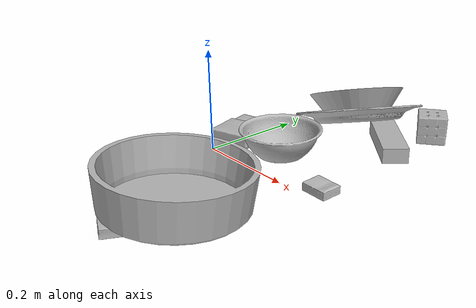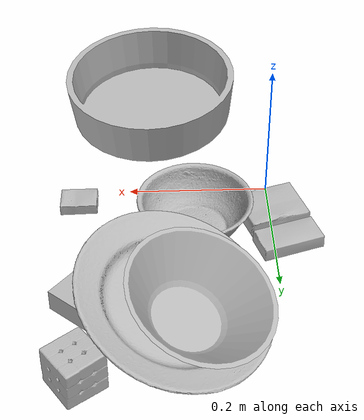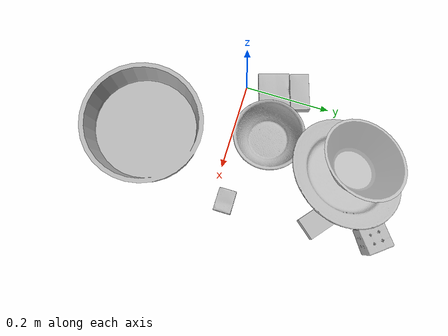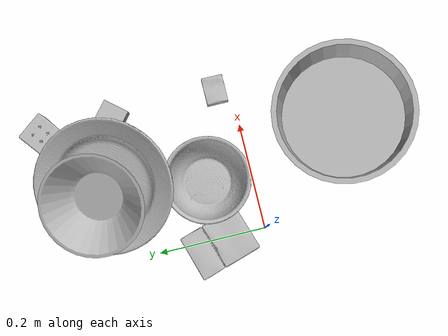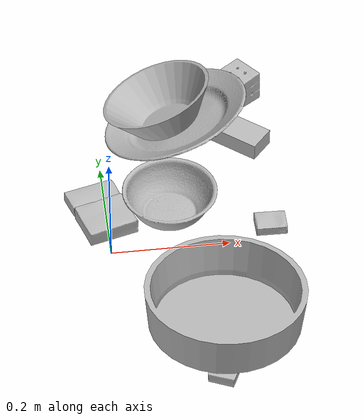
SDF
<sdf version="1.4">
  <world name="default">
    <light name="light1" type="point">
      <pose>0 0 1 0 0 0</pose>
      <diffuse>3 3 3 1</diffuse>
      <specular>3 3 3 1</specular>
    </light>
    <light name="light2" type="point">
      <pose>0 0.5 2 0 0 0</pose>
      <diffuse>1 1 1 1</diffuse>
      <specular>1 1 1 1</specular>
    </light>
    <light name="light3" type="point">
      <pose>0 0.5 2 0 0 0</pose>
      <diffuse>3 3 3 1</diffuse>
      <specular>3 3 3 1</specular>
    </light>
    <scene>
      <ambient>0.7 0.7 0.7</ambient>
    </scene>
    <model name="box1">
      <link name="link_box1">
        <collision name="default">
          <geometry>
            <mesh>
              <uri>model://sugar_box/collision_meshes/collision.obj</uri>
              <scale>0.5 0.5 0.5</scale>
            </mesh>
          </geometry>
          <surface>
            <friction>
              <ode>
                <mu>0.5</mu>
                <mu2>0.5</mu2>
              </ode>
            </friction>
          <contact>
        <ode>
            <max_vel>0</max_vel>
            <min_depth>0.0001</min_depth>
            <kp>1e8</kp>
        </ode>
    </contact></surface>
        </collision>
        <visual name="default">
          <geometry>
            <mesh>
              <uri>model://sugar_box/visual_meshes/visual.dae</uri>
              <scale>0.5 0.5 0.5</scale>
            </mesh>
          </geometry>
        </visual>
        <inertial>
          <mass>0.05968111753463745</mass>
          <pose>0.0005171863595023751 1.924554817378521e-05 -0.00018182402709499002 -0.00040462627153530444 0.0010506635220302928 0.002615378323275012</pose>
          <inertia>
            <ixx>1.2431535e-05</ixx>
            <iyy>4.0181283e-05</iyy>
            <izz>4.8101785e-05</izz>
            <ixy>0</ixy>
            <ixz>0</ixz>
            <iyz>0</iyz>
          </inertia>
        </inertial>
      </link>
      <pose>-0.01888187788426876 0.1234571784734726 0.011399306356906891 0.0007741625991740197 -0.023433579819164385 -2.8470410950421927</pose>
    </model>
    <model name="box11">
      <link name="link_box11">
        <collision name="default">
          <geometry>
            <mesh>
              <uri>model://cracker_box/collision_meshes/collision.obj</uri>
              <scale>0.25 0.25 0.25</scale>
            </mesh>
          </geometry>
          <surface>
            <friction>
              <ode>
                <mu>0.5</mu>
                <mu2>0.5</mu2>
              </ode>
            </friction>
          <contact>
        <ode>
            <max_vel>0</max_vel>
            <min_depth>0.0001</min_depth>
            <kp>1e8</kp>
        </ode>
    </contact></surface>
        </collision>
        <visual name="default">
          <geometry>
            <mesh>
              <uri>model://cracker_box/visual_meshes/visual.dae</uri>
              <scale>0.25 0.25 0.25</scale>
            </mesh>
          </geometry>
        </visual>
        <inertial>
          <mass>0.04741516709327698</mass>
          <pose>0.0002366035187151283 6.358561950037256e-05 -0.0004257383698131889 -0.00031620780351981393 -0.01110649053153066 0.0025467950031323855</pose>
          <inertia>
            <ixx>7.537689e-06</ixx>
            <iyy>1.2446206e-05</iyy>
            <izz>1.7761875e-05</izz>
            <ixy>0</ixy>
            <ixz>0</ixz>
            <iyz>0</iyz>
          </inertia>
        </inertial>
      </link>
      <pose>0.273222953081131 0.030375268310308456 0.009120449423789978 -0.011788062945073336 -0.007367179096934759 -3.141417551832201</pose>
    </model>
    <model name="box2">
      <link name="link_box2">
        <collision name="default">
          <geometry>
            <mesh>
              <uri>model://jenga/collision_meshes/collision.obj</uri>
              <scale>1.0 1.0 1.0</scale>
            </mesh>
          </geometry>
          <surface>
            <friction>
              <ode>
                <mu>0.5</mu>
                <mu2>0.5</mu2>
              </ode>
            </friction>
          <contact>
        <ode>
            <max_vel>0</max_vel>
            <min_depth>0.0001</min_depth>
            <kp>1e8</kp>
        </ode>
    </contact></surface>
        </collision>
        <visual name="default">
          <geometry>
            <mesh>
              <uri>model://jenga/visual_meshes/visual.dae</uri>
              <scale>1.0 1.0 1.0</scale>
            </mesh>
          </geometry>
        </visual>
        <inertial>
          <mass>0.17569443583488464</mass>
          <pose>-2.502855807051674e-07 -0.00010250010382151231 -4.0923401684267446e-05 0.0 -7.342153480750062e-07 0.0</pose>
          <inertia>
            <ixx>4.8618913e-05</ixx>
            <iyy>0.00032944046</iyy>
            <izz>0.0003517057</izz>
            <ixy>0</ixy>
            <ixz>0</ixz>
            <iyz>0</iyz>
          </inertia>
        </inertial>
      </link>
      <pose>0.2275409996509552 0.2640993297100067 0.015008071437478065 -0.00033423538379987854 1.5346369124433793e-05 2.4415751393364316</pose>
    </model>
    <model name="box21">
      <link name="link_box21">
        <collision name="default">
          <geometry>
            <mesh>
              <uri>model://rubiks_cube/collision_meshes/collision.obj</uri>
              <scale>1.0 1.0 1.0</scale>
            </mesh>
          </geometry>
          <surface>
            <friction>
              <ode>
                <mu>0.5</mu>
                <mu2>0.5</mu2>
              </ode>
            </friction>
          <contact>
        <ode>
            <max_vel>0</max_vel>
            <min_depth>0.0001</min_depth>
            <kp>1e8</kp>
        </ode>
    </contact></surface>
        </collision>
        <visual name="default">
          <geometry>
            <mesh>
              <uri>model://rubiks_cube/visual_meshes/visual.dae</uri>
              <scale>1.0 1.0 1.0</scale>
            </mesh>
          </geometry>
        </visual>
        <inertial>
          <mass>0.16427944600582123</mass>
          <pose>2.6721041649580002e-05 5.2569666877388954e-05 -7.2643156272533815e-06 -0.05467299197426534 -0.0981400693449792 -0.034455479534688374</pose>
          <inertia>
            <ixx>9.0775415e-05</ixx>
            <iyy>9.0352085e-05</iyy>
            <izz>9.152764e-05</izz>
            <ixy>0</ixy>
            <ixz>0</ixz>
            <iyz>0</iyz>
          </inertia>
        </inertial>
      </link>
      <pose>0.26042354106903076 0.3599017858505249 0.028678972274065018 -3.3852921947319333e-06 -1.1836262058083793e-06 -2.4949096696606303</pose>
    </model>
    <model name="box3">
      <link name="link_box3">
        <collision name="default">
          <geometry>
            <mesh>
              <uri>model://gelatin_box/collision_meshes/collision.obj</uri>
              <scale>1.0 1.0 1.0</scale>
            </mesh>
          </geometry>
          <surface>
            <friction>
              <ode>
                <mu>0.5</mu>
                <mu2>0.5</mu2>
              </ode>
            </friction>
          <contact>
        <ode>
            <max_vel>0</max_vel>
            <min_depth>0.0001</min_depth>
            <kp>1e8</kp>
        </ode>
    </contact></surface>
        </collision>
        <visual name="default">
          <geometry>
            <mesh>
              <uri>model://gelatin_box/visual_meshes/visual.dae</uri>
              <scale>1.0 1.0 1.0</scale>
            </mesh>
          </geometry>
        </visual>
        <inertial>
          <mass>0.21197354793548584</mass>
          <pose>0.0004319618456065655 0.00011156872642459348 -0.0003640321083366871 -0.0010503719594585892 -0.004755818227500045 0.016440553882781303</pose>
          <inertia>
            <ixx>0.00014963602</ixx>
            <iyy>0.00010688423</iyy>
            <izz>0.00022777937</izz>
            <ixy>0</ixy>
            <ixz>0</ixz>
            <iyz>0</iyz>
          </inertia>
        </inertial>
      </link>
      <pose>-0.0013256383826956153 0.066002756357193 0.015168307349085808 0.005595139874283383 -0.007304664798862521 1.8642147243019311</pose>
    </model>
    <model name="box31">
      <link name="link_box31">
        <collision name="default">
          <geometry>
            <mesh>
              <uri>model://pudding_box/collision_meshes/collision.obj</uri>
              <scale>0.5 0.5 0.5</scale>
            </mesh>
          </geometry>
          <surface>
            <friction>
              <ode>
                <mu>0.5</mu>
                <mu2>0.5</mu2>
              </ode>
            </friction>
          <contact>
        <ode>
            <max_vel>0</max_vel>
            <min_depth>0.0001</min_depth>
            <kp>1e8</kp>
        </ode>
    </contact></surface>
        </collision>
        <visual name="default">
          <geometry>
            <mesh>
              <uri>model://pudding_box/visual_meshes/visual.dae</uri>
              <scale>0.5 0.5 0.5</scale>
            </mesh>
          </geometry>
        </visual>
        <inertial>
          <mass>0.056796859949827194</mass>
          <pose>0.00024474109522998333 0.0004033942532259971 -0.0002594413817860186 0.005213102251005844 -0.00660379641961884 0.02007983447872704</pose>
          <inertia>
            <ixx>1.605148e-05</ixx>
            <iyy>1.0799551e-05</iyy>
            <izz>2.3704206e-05</izz>
            <ixy>0</ixy>
            <ixz>0</ixz>
            <iyz>0</iyz>
          </inertia>
        </inertial>
      </link>
      <pose>0.15488147735595703 -0.2893483340740204 0.009973271749913692 0.036739910383018715 0.002014439624190404 2.735146282404992</pose>
    </model>
    <model name="plate1">
      <link name="link_plate1">
        <collision name="default">
          <geometry>
            <mesh>
              <uri>model://pan_tefal/collision_meshes/collision.obj</uri>
              <scale>1.0 1.0 1.0</scale>
            </mesh>
          </geometry>
          <surface>
            <friction>
              <ode>
                <mu>0.5</mu>
                <mu2>0.5</mu2>
              </ode>
            </friction>
          <contact>
        <ode>
            <max_vel>0</max_vel>
            <min_depth>0.0001</min_depth>
            <kp>1e8</kp>
        </ode>
    </contact></surface>
        </collision>
        <visual name="default">
          <geometry>
            <mesh>
              <uri>model://pan_tefal/visual_meshes/visual.dae</uri>
              <scale>1.0 1.0 1.0</scale>
            </mesh>
          </geometry>
        </visual>
        <inertial>
          <mass>1.4752264022827148</mass>
          <pose>-0.0001800210156943649 3.278951771790162e-05 -0.008514936082065105 0.0008190241607511121 -0.0003301478392365544 -0.33184922825406304</pose>
          <inertia>
            <ixx>0.010183416</ixx>
            <iyy>0.01024907</iyy>
            <izz>0.018745707</izz>
            <ixy>0</ixy>
            <ixz>0</ixz>
            <iyz>0</iyz>
          </inertia>
        </inertial>
      </link>
      <pose>0.1673053801059723 -0.1882220357656479 0.04884761571884155 0.08885497253582791 -0.01734098268437546 2.9996798123473636</pose>
    </model>
    <model name="bowl1">
      <link name="link_bowl1">
        <collision name="default">
          <geometry>
            <mesh>
              <uri>model://bowl/collision_meshes/collision.obj</uri>
              <scale>1.0 1.0 1.0</scale>
            </mesh>
          </geometry>
          <surface>
            <friction>
              <ode>
                <mu>0.5</mu>
                <mu2>0.5</mu2>
              </ode>
            </friction>
          <contact>
        <ode>
            <max_vel>0</max_vel>
            <min_depth>0.0001</min_depth>
            <kp>1e8</kp>
        </ode>
    </contact></surface>
        </collision>
        <visual name="default">
          <geometry>
            <mesh>
              <uri>model://bowl/visual_meshes/visual.dae</uri>
              <scale>1.0 1.0 1.0</scale>
            </mesh>
          </geometry>
        </visual>
        <inertial>
          <mass>0.13335108757019043</mass>
          <pose>0.00020445126574486494 -0.0010302079608663917 -0.0008042646804824471 -0.01576397865263616 0.014546905041115984 0.7140477796865206</pose>
          <inertia>
            <ixx>0.000306318</ixx>
            <iyy>0.00029947367</iyy>
            <izz>0.00051533245</izz>
            <ixy>0</ixy>
            <ixz>0</ixz>
            <iyz>0</iyz>
          </inertia>
        </inertial>
      </link>
      <pose>0.1082635223865509 0.08398012071847916 0.027780471369624138 3.03357747048911e-08 9.244564482480856e-06 0.3509876912147715</pose>
    </model>
    <model name="plate2">
      <link name="link_plate2">
        <collision name="default">
          <geometry>
            <mesh>
              <uri>model://plate/collision_meshes/collision.obj</uri>
              <scale>1.0 1.0 1.0</scale>
            </mesh>
          </geometry>
          <surface>
            <friction>
              <ode>
                <mu>0.5</mu>
                <mu2>0.5</mu2>
              </ode>
            </friction>
          <contact>
        <ode>
            <max_vel>0</max_vel>
            <min_depth>0.0001</min_depth>
            <kp>1e8</kp>
        </ode>
    </contact></surface>
        </collision>
        <visual name="default">
          <geometry>
            <mesh>
              <uri>model://plate/visual_meshes/visual.dae</uri>
              <scale>1.0 1.0 1.0</scale>
            </mesh>
          </geometry>
        </visual>
        <inertial>
          <mass>0.1753290891647339</mass>
          <pose>-0.0006044620531611145 0.0002782598021440208 -0.0010561987292021513 0.0022188066246853514 -0.003225466953145419 0.45260347799947726</pose>
          <inertia>
            <ixx>0.00082019315</ixx>
            <iyy>0.00081234827</iyy>
            <izz>0.0016041752</izz>
            <ixy>0</ixy>
            <ixz>0</ixz>
            <iyz>0</iyz>
          </inertia>
        </inertial>
      </link>
      <pose>0.14231254160404205 0.26959699392318726 0.043029628694057465 0.371032943101186 -0.0916396383905887 -1.892561985766741</pose>
    </model>
    <model name="bowl2">
      <link name="link_bowl2">
        <collision name="default">
          <geometry>
            <mesh>
              <uri>model://bowl_a/collision_meshes/collision.obj</uri>
              <scale>1.0 1.0 1.0</scale>
            </mesh>
          </geometry>
          <surface>
            <friction>
              <ode>
                <mu>0.5</mu>
                <mu2>0.5</mu2>
              </ode>
            </friction>
          <contact>
        <ode>
            <max_vel>0</max_vel>
            <min_depth>0.0001</min_depth>
            <kp>1e8</kp>
        </ode>
    </contact></surface>
        </collision>
        <visual name="default">
          <geometry>
            <mesh>
              <uri>model://bowl_a/visual_meshes/visual.dae</uri>
              <scale>1.0 1.0 1.0</scale>
            </mesh>
          </geometry>
        </visual>
        <inertial>
          <mass>0.4813200831413269</mass>
          <pose>0.0002786751138046384 4.731064836960286e-05 -0.0013765294570475817 -0.0009805320964546374 -0.0010938264681851768 -0.19124047933057892</pose>
          <inertia>
            <ixx>0.0013703406</ixx>
            <iyy>0.0013787533</iyy>
            <izz>0.0024372027</izz>
            <ixy>0</ixy>
            <ixz>0</ixz>
            <iyz>0</iyz>
          </inertia>
        </inertial>
      </link>
      <pose>0.1182272657752037 0.290652871131897 0.05271248146891594 -0.17158329184353208 0.35209129435944503 2.128771909393163</pose>
    </model>
  <physics type="ode">
      <max_contacts>50</max_contacts>
      <ode>
        <solver>
          <type>quick</type>
          <iters>75</iters>
        </solver>
        <constraints>
          <contact_max_correcting_vel>0</contact_max_correcting_vel>
          <contact_surface_layer>0</contact_surface_layer>
        </constraints>
      </ode>
    </physics></world>
</sdf>
